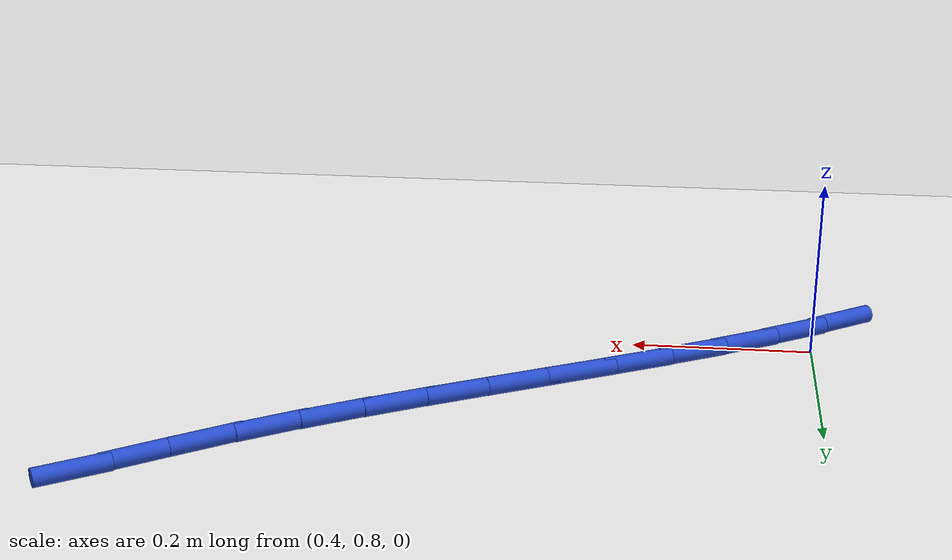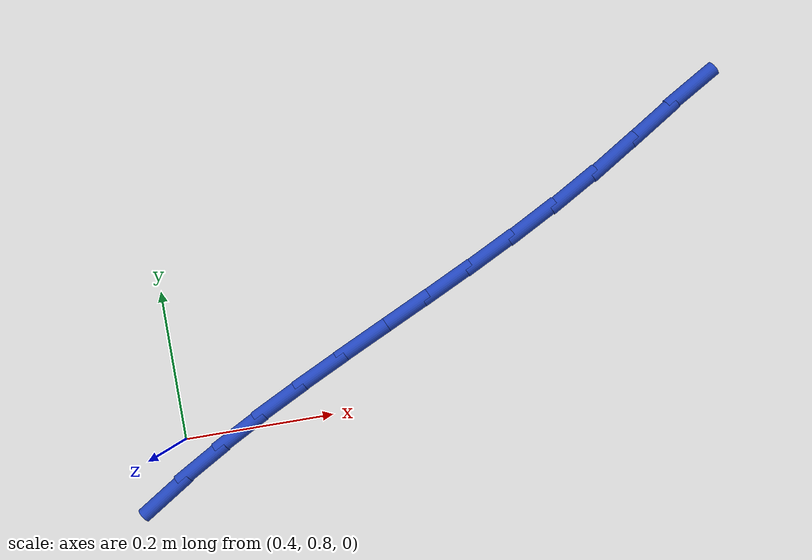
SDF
<sdf version="1.6">
 <world name="default">
  <model name="ground_plane">
   <static>1</static>
   <link name="link">
    <collision name="collision">
     <geometry><plane><normal>0 0 1</normal><size>100 100</size></plane></geometry>
     <surface><friction><ode><mu>100</mu><mu2>50</mu2></ode></friction></surface>
    </collision>
    <visual name="visual">
     <cast_shadows>0</cast_shadows>
     <geometry><plane><normal>0 0 1</normal><size>100 100</size></plane></geometry>
     <material>
      <script><uri>file://media/materials/scripts/gazebo.material</uri><name>Gazebo/WhiteGlow</name></script>
     </material>
    </visual>
   </link>
  </model>
  <model name="line">
   <link name="link_13">
    <pose>0.36364765862059945 0.731263627174879 0.01 0 1.57 0.567782914302151</pose>
    <collision name="collision">
     <geometry><cylinder><radius>0.01</radius><length>0.08</length></cylinder></geometry>
    </collision>
    <visual name="visual">
     <material>
      <script><name>Gazebo/Blue</name><uri>file://media/materials/scripts/gazebo.material</uri></script>
     </material>
     <geometry><cylinder><radius>0.01</radius><length>0.08</length></cylinder></geometry>
    </visual>
   </link>
   <link name="link_14">
    <pose>0.4181516161465631 0.7660287056346861 0.01 0 1.57 0.5235628043984485</pose>
    <collision name="collision">
     <geometry><cylinder><radius>0.01</radius><length>0.08</length></cylinder></geometry>
    </collision>
    <visual name="visual">
     <material>
      <script><name>Gazebo/Blue</name><uri>file://media/materials/scripts/gazebo.material</uri></script>
     </material>
     <geometry><cylinder><radius>0.01</radius><length>0.08</length></cylinder></geometry>
    </visual>
   </link>
   <link name="link_15">
    <pose>0.47497528837266023 0.7988331427931376 0.01 0 1.57 0.4891915487366693</pose>
    <collision name="collision">
     <geometry><cylinder><radius>0.01</radius><length>0.08</length></cylinder></geometry>
    </collision>
    <visual name="visual">
     <material>
      <script><name>Gazebo/Blue</name><uri>file://media/materials/scripts/gazebo.material</uri></script>
     </material>
     <geometry><cylinder><radius>0.01</radius><length>0.08</length></cylinder></geometry>
    </visual>
   </link>
   <link name="link_16">
    <pose>0.5337312541786733 0.8301118891817137 0.01 0 1.57 0.4641461446239845</pose>
    <collision name="collision">
     <geometry><cylinder><radius>0.01</radius><length>0.08</length></cylinder></geometry>
    </collision>
    <visual name="visual">
     <material>
      <script><name>Gazebo/Blue</name><uri>file://media/materials/scripts/gazebo.material</uri></script>
     </material>
     <geometry><cylinder><radius>0.01</radius><length>0.08</length></cylinder></geometry>
    </visual>
   </link>
   <link name="link_17">
    <pose>0.5940320924443852 0.8602998953318959 0.01 0 1.57 0.4479462058985179</pose>
    <collision name="collision">
     <geometry><cylinder><radius>0.01</radius><length>0.08</length></cylinder></geometry>
    </collision>
    <visual name="visual">
     <material>
      <script><name>Gazebo/Blue</name><uri>file://media/materials/scripts/gazebo.material</uri></script>
     </material>
     <geometry><cylinder><radius>0.01</radius><length>0.08</length></cylinder></geometry>
    </visual>
   </link>
   <link name="link_18">
    <pose>0.6554903820495785 0.8898321117751653 0.01 0 1.57 0.4402038215092702</pose>
    <collision name="collision">
     <geometry><cylinder><radius>0.01</radius><length>0.08</length></cylinder></geometry>
    </collision>
    <visual name="visual">
     <material>
      <script><name>Gazebo/Blue</name><uri>file://media/materials/scripts/gazebo.material</uri></script>
     </material>
     <geometry><cylinder><radius>0.01</radius><length>0.08</length></cylinder></geometry>
    </visual>
   </link>
   <link name="link_19">
    <pose>0.7177187018740363 0.9191434890430024 0.01 0 1.57 0.44064673726354314</pose>
    <collision name="collision">
     <geometry><cylinder><radius>0.01</radius><length>0.08</length></cylinder></geometry>
    </collision>
    <visual name="visual">
     <material>
      <script><name>Gazebo/Blue</name><uri>file://media/materials/scripts/gazebo.material</uri></script>
     </material>
     <geometry><cylinder><radius>0.01</radius><length>0.08</length></cylinder></geometry>
    </visual>
   </link>
   <link name="link_20">
    <pose>0.7803296307975409 0.9486689776668884 0.01 0 1.57 0.4491234834054263</pose>
    <collision name="collision">
     <geometry><cylinder><radius>0.01</radius><length>0.08</length></cylinder></geometry>
    </collision>
    <visual name="visual">
     <material>
      <script><name>Gazebo/Blue</name><uri>file://media/materials/scripts/gazebo.material</uri></script>
     </material>
     <geometry><cylinder><radius>0.01</radius><length>0.08</length></cylinder></geometry>
    </visual>
   </link>
   <link name="link_21">
    <pose>0.8429357476998751 0.978843528178304 0.01 0 1.57 0.4655953825499811</pose>
    <collision name="collision">
     <geometry><cylinder><radius>0.01</radius><length>0.08</length></cylinder></geometry>
    </collision>
    <visual name="visual">
     <material>
      <script><name>Gazebo/Blue</name><uri>file://media/materials/scripts/gazebo.material</uri></script>
     </material>
     <geometry><cylinder><radius>0.01</radius><length>0.08</length></cylinder></geometry>
    </visual>
   </link>
   <link name="link_22">
    <pose>0.9051496314608221 1.0101020911087302 0.01 0 1.57 0.4901170346623715</pose>
    <collision name="collision">
     <geometry><cylinder><radius>0.01</radius><length>0.08</length></cylinder></geometry>
    </collision>
    <visual name="visual">
     <material>
      <script><name>Gazebo/Blue</name><uri>file://media/materials/scripts/gazebo.material</uri></script>
     </material>
     <geometry><cylinder><radius>0.01</radius><length>0.08</length></cylinder></geometry>
    </visual>
   </link>
   <link name="link_23">
    <pose>0.9665838609601638 1.042879616989648 0.01 0 1.57 0.5228042190090058</pose>
    <collision name="collision">
     <geometry><cylinder><radius>0.01</radius><length>0.08</length></cylinder></geometry>
    </collision>
    <visual name="visual">
     <material>
      <script><name>Gazebo/Blue</name><uri>file://media/materials/scripts/gazebo.material</uri></script>
     </material>
     <geometry><cylinder><radius>0.01</radius><length>0.08</length></cylinder></geometry>
    </visual>
   </link>
   <link name="link_24">
    <pose>1.0268510150776842 1.0776110563525387 0.01 0 1.57 0.5580821353895019</pose>
    <collision name="collision">
     <geometry><cylinder><radius>0.01</radius><length>0.08</length></cylinder></geometry>
    </collision>
    <visual name="visual">
     <material>
      <script><name>Gazebo/Blue</name><uri>file://media/materials/scripts/gazebo.material</uri></script>
     </material>
     <geometry><cylinder><radius>0.01</radius><length>0.08</length></cylinder></geometry>
    </visual>
   </link>
   <link name="link_25">
    <pose>1.0857056254849327 1.1143528730966548 0.01 0 1.57 0.5648540004003666</pose>
    <collision name="collision">
     <geometry><cylinder><radius>0.01</radius><length>0.08</length></cylinder></geometry>
    </collision>
    <visual name="visual">
     <material>
      <script><name>Gazebo/Blue</name><uri>file://media/materials/scripts/gazebo.material</uri></script>
     </material>
     <geometry><cylinder><radius>0.01</radius><length>0.08</length></cylinder></geometry>
    </visual>
   </link>
   <link name="link_26">
    <pose>1.1436783814492706 1.1510920735864003 0.01 0 1.57 0.531333116966788</pose>
    <collision name="collision">
     <geometry><cylinder><radius>0.01</radius><length>0.08</length></cylinder></geometry>
    </collision>
    <visual name="visual">
     <material>
      <script><name>Gazebo/Blue</name><uri>file://media/materials/scripts/gazebo.material</uri></script>
     </material>
     <geometry><cylinder><radius>0.01</radius><length>0.08</length></cylinder></geometry>
    </visual>
   </link>
  </model>
 </world>
</sdf>
